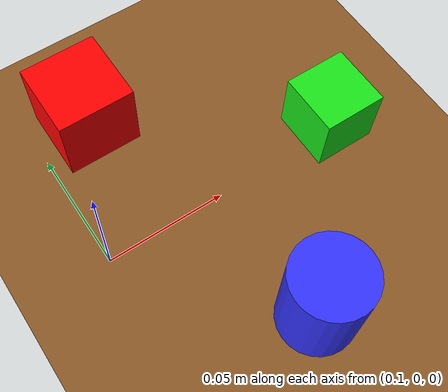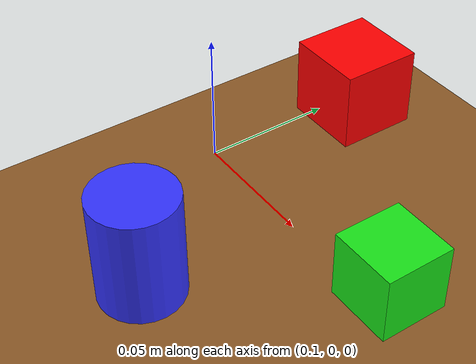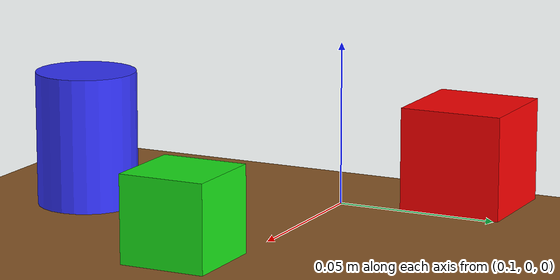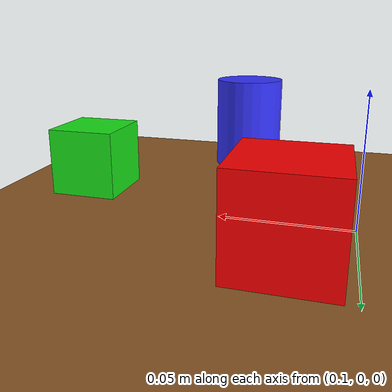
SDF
<?xml version="1.0" ?>
<sdf version="1.8">
  <world name="twin_world">
    <physics name="1ms" type="bullet">
      <max_step_size>0.001</max_step_size>
      <real_time_factor>1.0</real_time_factor>
    </physics>

    <plugin filename="gz-sim-physics-system" name="gz::sim::systems::Physics"/>
    <plugin filename="gz-sim-user-commands-system" name="gz::sim::systems::UserCommands"/>
    <plugin filename="gz-sim-scene-broadcaster-system" name="gz::sim::systems::SceneBroadcaster"/>
    <plugin filename="gz-sim-contact-system" name="gz::sim::systems::Contact"/>

    <!-- 조명 -->
    <light type="directional" name="sun">
      <cast_shadows>true</cast_shadows>
      <pose>0 0 10 0 0 0</pose>
      <diffuse>0.8 0.8 0.8 1</diffuse>
      <specular>0.2 0.2 0.2 1</specular>
      <direction>-0.5 0.1 -0.9</direction>
    </light>

    <!-- 바닥 -->
    <model name="ground_plane">
      <static>true</static>
      <link name="link">
        <collision name="collision">
          <geometry><plane><normal>0 0 1</normal></plane></geometry>
        </collision>
        <visual name="visual">
          <geometry><plane><normal>0 0 1</normal><size>5 5</size></plane></geometry>
          <material>
            <ambient>0.8 0.8 0.8 1</ambient>
            <diffuse>0.8 0.8 0.8 1</diffuse>
          </material>
        </visual>
      </link>
    </model>

    <!-- 테이블 -->
    <model name="table">
      <static>true</static>
      <pose>0.15 0 -0.01 0 0 0</pose>
      <link name="link">
        <collision name="collision">
          <geometry><box><size>0.35 0.50 0.02</size></box></geometry>
        </collision>
        <visual name="visual">
          <geometry><box><size>0.35 0.50 0.02</size></box></geometry>
          <material>
            <ambient>0.55 0.35 0.15 1</ambient>
            <diffuse>0.55 0.35 0.15 1</diffuse>
          </material>
        </visual>
      </link>
    </model>

    <!-- 빨간 큐브 -->
    <model name="red_cube">
      <pose>0.12 0.05 0.025 0 0 0</pose>
      <link name="link">
        <inertial>
          <mass>0.03</mass>
          <inertia><ixx>5e-6</ixx><iyy>5e-6</iyy><izz>5e-6</izz></inertia>
        </inertial>
        <collision name="c"><geometry><box><size>0.03 0.03 0.03</size></box></geometry>
          <surface><friction><ode><mu>1</mu><mu2>1</mu2></ode></friction></surface>
        </collision>
        <visual name="v"><geometry><box><size>0.03 0.03 0.03</size></box></geometry>
          <material><ambient>1 0 0 1</ambient><diffuse>1 0 0 1</diffuse></material>
        </visual>
      </link>
    </model>

    <!-- 파란 실린더 -->
    <model name="blue_cylinder">
      <pose>0.15 -0.06 0.025 0 0 0</pose>
      <link name="link">
        <inertial>
          <mass>0.03</mass>
          <inertia><ixx>4e-6</ixx><iyy>4e-6</iyy><izz>3e-6</izz></inertia>
        </inertial>
        <collision name="c"><geometry><cylinder><radius>0.015</radius><length>0.04</length></cylinder></geometry>
          <surface><friction><ode><mu>1</mu><mu2>1</mu2></ode></friction></surface>
        </collision>
        <visual name="v"><geometry><cylinder><radius>0.015</radius><length>0.04</length></cylinder></geometry>
          <material><ambient>0.1 0.1 1 1</ambient><diffuse>0.2 0.2 1 1</diffuse></material>
        </visual>
      </link>
    </model>

    <!-- 초록 큐브 -->
    <model name="green_cube">
      <pose>0.20 0.0 0.02 0 0 0</pose>
      <link name="link">
        <inertial>
          <mass>0.02</mass>
          <inertia><ixx>3e-6</ixx><iyy>3e-6</iyy><izz>3e-6</izz></inertia>
        </inertial>
        <collision name="c"><geometry><box><size>0.025 0.025 0.025</size></box></geometry>
          <surface><friction><ode><mu>1</mu><mu2>1</mu2></ode></friction></surface>
        </collision>
        <visual name="v"><geometry><box><size>0.025 0.025 0.025</size></box></geometry>
          <material><ambient>0 0.8 0 1</ambient><diffuse>0.1 0.9 0.1 1</diffuse></material>
        </visual>
      </link>
    </model>

    <!-- GUI 카메라: 로봇 정면에서 가까이 -->
    <gui fullscreen="0">
      <camera name="user_camera">
        <pose>0.45 -0.35 0.35 0 0.35 2.3</pose>
      </camera>
    </gui>

  </world>
</sdf>
